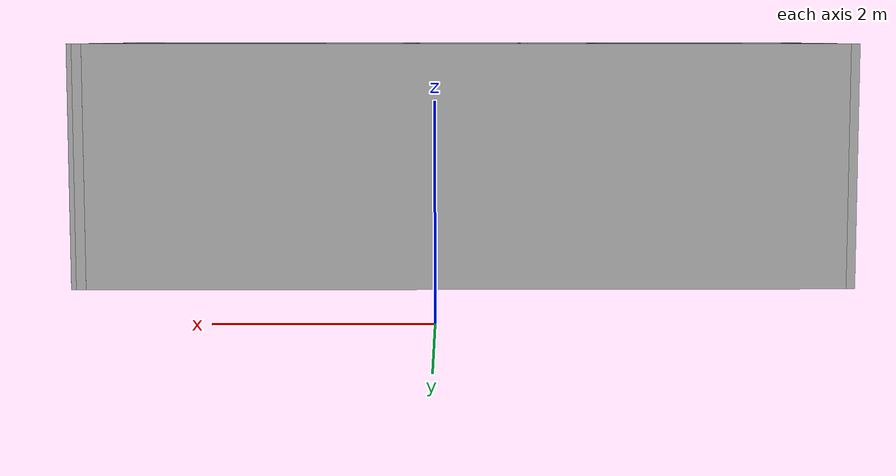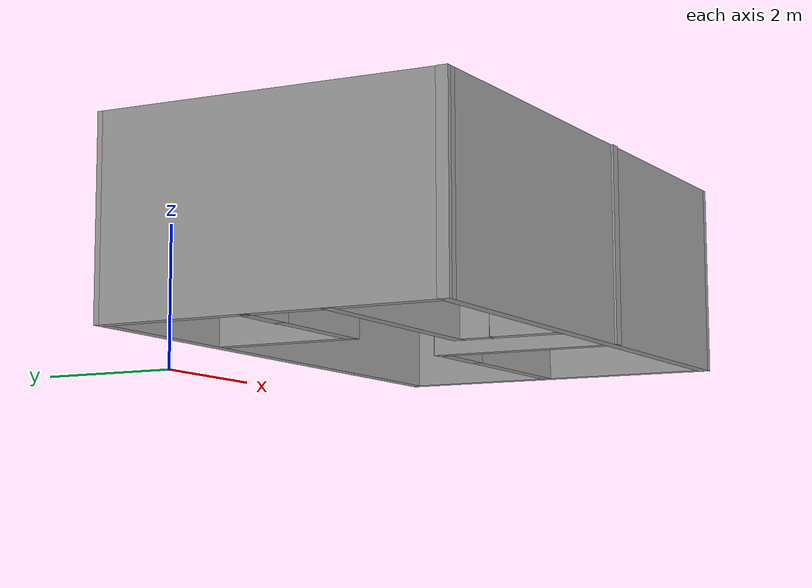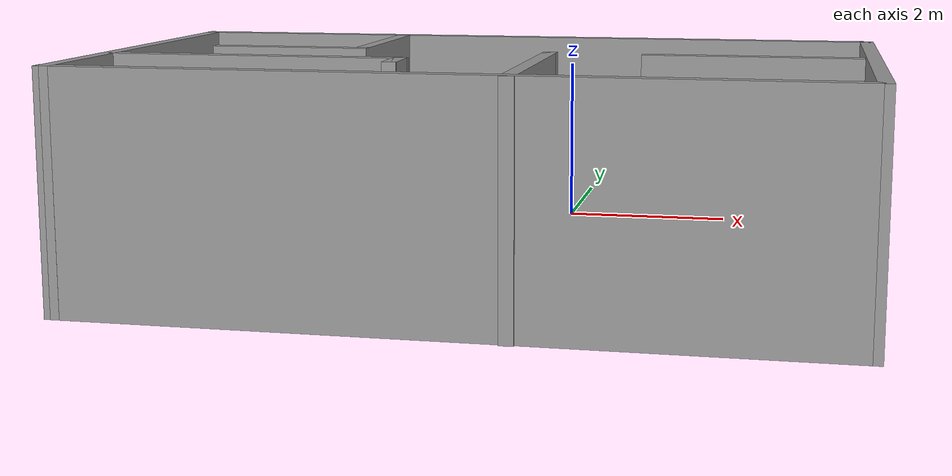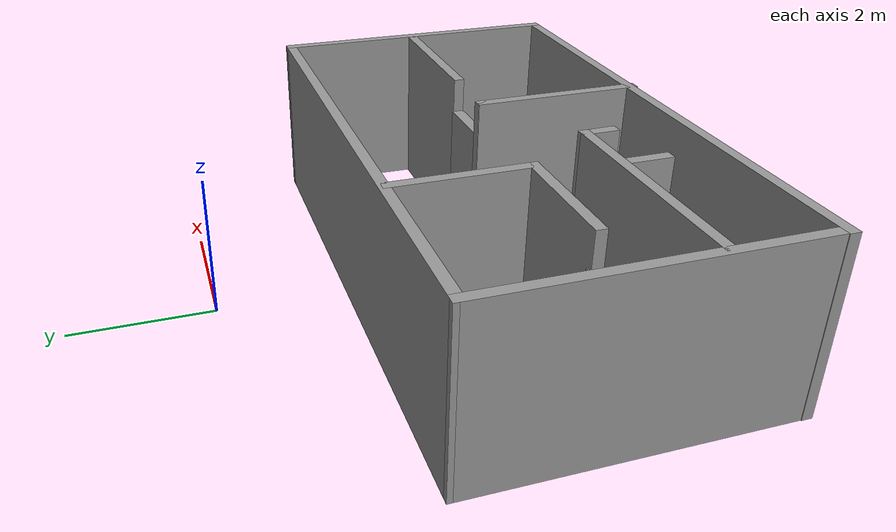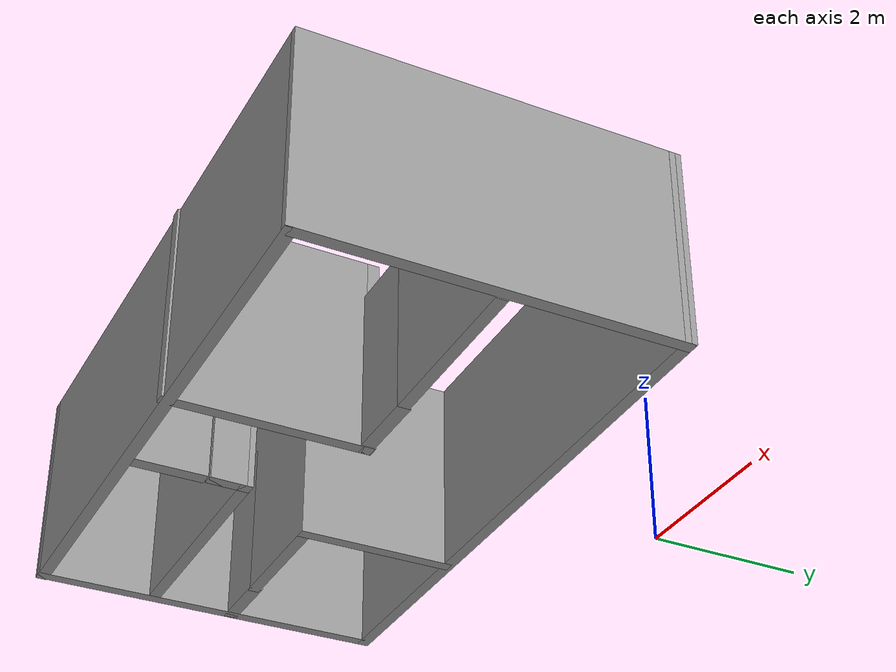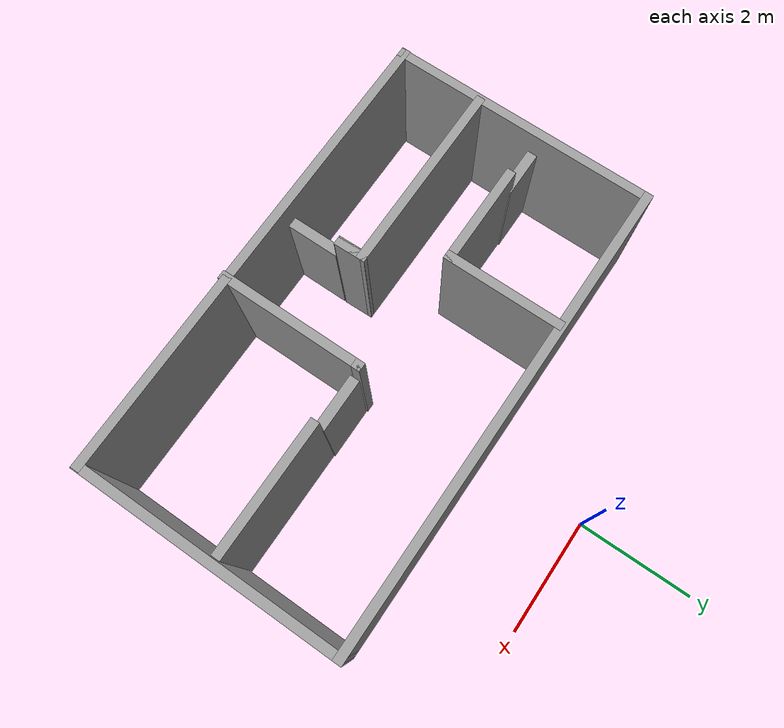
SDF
<?xml version='1.0'?>
<sdf version='1.7'>
  <model name='room'>
    <pose>-0.284915 -3.2025 0 0 -0 0</pose>
    <link name='Door_0'>
      <collision name='Door_0_Collision'>
        <geometry>
          <box>
            <size>0.9 0.17 2</size>
          </box>
        </geometry>
        <pose>0 0 1 0 -0 0</pose>
      </collision>
      <visual name='Door_0_Visual'>
        <pose>0 0 1 0 -0 0</pose>
        <geometry>
          <box>
            <size>0.9 0.17 2</size>
          </box>
        </geometry>
        <material>
          <script>
            <uri>file://media/materials/scripts/gazebo.material</uri>
            <name>Gazebo/Grey</name>
          </script>
        </material>
      </visual>
      <pose>-3.52508 -0.5975 0 0 -0 0</pose>
    </link>
    <link name='Door_4'>
      <collision name='Door_4_Collision'>
        <geometry>
          <box>
            <size>0.9 0.17 2</size>
          </box>
        </geometry>
        <pose>0 0 1 0 -0 0</pose>
      </collision>
      <visual name='Door_4_Visual'>
        <pose>0 0 1 0 -0 0</pose>
        <geometry>
          <box>
            <size>0.9 0.17 2</size>
          </box>
        </geometry>
        <material>
          <script>
            <uri>file://media/materials/scripts/gazebo.material</uri>
            <name>Gazebo/Grey</name>
          </script>
        </material>
      </visual>
      <pose>-0.777259 -2.59266 0 0 0 -1.57064</pose>
    </link>
    <link name='Door_5'>
      <collision name='Door_5_Collision'>
        <geometry>
          <box>
            <size>0.9 0.17 2</size>
          </box>
        </geometry>
        <pose>0 0 1 0 -0 0</pose>
      </collision>
      <visual name='Door_5_Visual'>
        <pose>0 0 1 0 -0 0</pose>
        <geometry>
          <box>
            <size>0.9 0.17 2</size>
          </box>
        </geometry>
        <material>
          <script>
            <uri>file://media/materials/scripts/gazebo.material</uri>
            <name>Gazebo/Grey</name>
          </script>
        </material>
      </visual>
      <pose>1.15274 -0.79266 0 0 -0 0.006358</pose>
    </link>
    <link name='Wall_0'>
      <collision name='Wall_0_Collision'>
        <geometry>
          <box>
            <size>4.5401 0.15 2.5</size>
          </box>
        </geometry>
        <pose>0 0 1.25 0 -0 0</pose>
      </collision>
      <visual name='Wall_0_Visual'>
        <pose>0 0 1.25 0 -0 0</pose>
        <geometry>
          <box>
            <size>4.5401 0.15 2.5</size>
          </box>
        </geometry>
        <material>
          <script>
            <uri>file://media/materials/scripts/gazebo.material</uri>
            <name>Gazebo/Grey</name>
          </script>
          <ambient>1 1 1 1</ambient>
        </material>
        <meta>
          <layer>0</layer>
        </meta>
      </visual>
      <pose>-3.92008 -0.9025 0 0 -0 -1.57307</pose>
    </link>
    <link name='Wall_1'>
      <collision name='Wall_1_Collision'>
        <geometry>
          <box>
            <size>8 0.15 2.5</size>
          </box>
        </geometry>
        <pose>0 0 1.25 0 -0 0</pose>
      </collision>
      <visual name='Wall_1_Visual'>
        <pose>0 0 1.25 0 -0 0</pose>
        <geometry>
          <box>
            <size>8 0.15 2.5</size>
          </box>
        </geometry>
        <material>
          <script>
            <uri>file://media/materials/scripts/gazebo.material</uri>
            <name>Gazebo/Grey</name>
          </script>
          <ambient>1 1 1 1</ambient>
        </material>
        <meta>
          <layer>0</layer>
        </meta>
      </visual>
      <pose>-0.010085 -3.0975 0 0 -0 0</pose>
    </link>
    <link name='Wall_10'>
      <collision name='Wall_10_Collision'>
        <geometry>
          <box>
            <size>2.25 0.15 2.5</size>
          </box>
        </geometry>
        <pose>0 0 1.25 0 -0 0</pose>
      </collision>
      <visual name='Wall_10_Visual'>
        <pose>0 0 1.25 0 -0 0</pose>
        <geometry>
          <box>
            <size>2.25 0.15 2.5</size>
          </box>
        </geometry>
        <material>
          <script>
            <uri>file://media/materials/scripts/gazebo.material</uri>
            <name>Gazebo/Grey</name>
          </script>
          <ambient>1 1 1 1</ambient>
        </material>
        <meta>
          <layer>0</layer>
        </meta>
      </visual>
      <pose>2.71491 -0.7975 0 0 -0 0</pose>
    </link>
    <link name='Wall_14'>
      <collision name='Wall_14_Collision'>
        <geometry>
          <box>
            <size>0.15 0.15 2.5</size>
          </box>
        </geometry>
        <pose>0 0 1.25 0 -0 0</pose>
      </collision>
      <visual name='Wall_14_Visual'>
        <pose>0 0 1.25 0 -0 0</pose>
        <geometry>
          <box>
            <size>0.15 0.15 2.5</size>
          </box>
        </geometry>
        <material>
          <script>
            <uri>file://media/materials/scripts/gazebo.material</uri>
            <name>Gazebo/Grey</name>
          </script>
          <ambient>1 1 1 1</ambient>
        </material>
        <meta>
          <layer>0</layer>
        </meta>
      </visual>
      <pose>0.614915 -0.7675 0 0 -0 0</pose>
    </link>
    <link name='Wall_19'>
      <collision name='Wall_19_Collision'>
        <geometry>
          <box>
            <size>2.5 0.15 2.5</size>
          </box>
        </geometry>
        <pose>0 0 1.25 0 -0 0</pose>
      </collision>
      <visual name='Wall_19_Visual'>
        <pose>0 0 1.25 0 -0 0</pose>
        <geometry>
          <box>
            <size>2.5 0.15 2.5</size>
          </box>
        </geometry>
        <material>
          <script>
            <uri>file://media/materials/scripts/gazebo.material</uri>
            <name>Gazebo/Grey</name>
          </script>
          <ambient>1 1 1 1</ambient>
        </material>
        <meta>
          <layer>0</layer>
        </meta>
      </visual>
      <pose>0.614915 -1.9525 0 0 -0 1.5708</pose>
    </link>
    <link name='Wall_2'>
      <collision name='Wall_2_Collision'>
        <geometry>
          <box>
            <size>4.5401 0.15 2.5</size>
          </box>
        </geometry>
        <pose>0 0 1.25 0 -0 0</pose>
      </collision>
      <visual name='Wall_2_Visual'>
        <pose>0 0 1.25 0 -0 0</pose>
        <geometry>
          <box>
            <size>4.5401 0.15 2.5</size>
          </box>
        </geometry>
        <material>
          <script>
            <uri>file://media/materials/scripts/gazebo.material</uri>
            <name>Gazebo/Grey</name>
          </script>
          <ambient>1 1 1 1</ambient>
        </material>
        <meta>
          <layer>0</layer>
        </meta>
      </visual>
      <pose>3.92991 -0.9025 0 0 -0 1.56852</pose>
    </link>
    <link name='Wall_22'>
      <collision name='Wall_22_Collision'>
        <geometry>
          <box>
            <size>3.25002 0.15 2.5</size>
          </box>
        </geometry>
        <pose>0 0 1.25 0 -0 0</pose>
      </collision>
      <visual name='Wall_22_Visual'>
        <pose>0 0 1.25 0 -0 0</pose>
        <geometry>
          <box>
            <size>3.25002 0.15 2.5</size>
          </box>
        </geometry>
        <material>
          <script>
            <uri>file://media/materials/scripts/gazebo.material</uri>
            <name>Gazebo/Grey</name>
          </script>
          <ambient>1 1 1 1</ambient>
        </material>
        <meta>
          <layer>0</layer>
        </meta>
      </visual>
      <pose>-2.32509 -1.6675 0 0 -0 0</pose>
    </link>
    <link name='Wall_29'>
      <collision name='Wall_29_Collision'>
        <geometry>
          <box>
            <size>0.525242 0.15 2.5</size>
          </box>
        </geometry>
        <pose>0 0 1.25 0 -0 0</pose>
      </collision>
      <visual name='Wall_29_Visual'>
        <pose>0 0 1.25 0 -0 0</pose>
        <geometry>
          <box>
            <size>0.525242 0.15 2.5</size>
          </box>
        </geometry>
        <material>
          <script>
            <uri>file://media/materials/scripts/gazebo.material</uri>
            <name>Gazebo/Grey</name>
          </script>
          <ambient>1 1 1 1</ambient>
        </material>
        <meta>
          <layer>0</layer>
        </meta>
      </visual>
      <pose>-0.771172 -1.85508 0 0 -0 1.59165</pose>
    </link>
    <link name='Wall_3'>
      <collision name='Wall_3_Collision'>
        <geometry>
          <box>
            <size>8 0.15 2.5</size>
          </box>
        </geometry>
        <pose>0 0 1.25 0 -0 0</pose>
      </collision>
      <visual name='Wall_3_Visual'>
        <pose>0 0 1.25 0 -0 0</pose>
        <geometry>
          <box>
            <size>8 0.15 2.5</size>
          </box>
        </geometry>
        <material>
          <script>
            <uri>file://media/materials/scripts/gazebo.material</uri>
            <name>Gazebo/Grey</name>
          </script>
          <ambient>1 1 1 1</ambient>
        </material>
        <meta>
          <layer>0</layer>
        </meta>
      </visual>
      <pose>0.009915 1.2925 0 0 -0 3.14159</pose>
    </link>
    <link name='Wall_30'>
      <collision name='Wall_30_Collision'>
        <geometry>
          <box>
            <size>0.525242 0.15 2.5</size>
          </box>
        </geometry>
        <pose>0 0 1.25 0 -0 0</pose>
      </collision>
      <visual name='Wall_30_Visual'>
        <pose>0 0 1.25 0 -0 0</pose>
        <geometry>
          <box>
            <size>0.525242 0.15 2.5</size>
          </box>
        </geometry>
        <material>
          <script>
            <uri>file://media/materials/scripts/gazebo.material</uri>
            <name>Gazebo/Grey</name>
          </script>
          <ambient>1 1 1 1</ambient>
        </material>
        <meta>
          <layer>0</layer>
        </meta>
      </visual>
      <pose>-0.771172 -1.86508 0 0 -0 -1.54994</pose>
    </link>
    <link name='Wall_5'>
      <collision name='Wall_5_Collision'>
        <geometry>
          <box>
            <size>2 0.15 2.5</size>
          </box>
        </geometry>
        <pose>0 0 1.25 0 -0 0</pose>
      </collision>
      <visual name='Wall_5_Visual'>
        <pose>0 0 1.25 0 -0 0</pose>
        <geometry>
          <box>
            <size>2 0.15 2.5</size>
          </box>
        </geometry>
        <material>
          <script>
            <uri>file://media/materials/scripts/gazebo.material</uri>
            <name>Gazebo/Grey</name>
          </script>
          <ambient>1 1 1 1</ambient>
        </material>
        <meta>
          <layer>0</layer>
        </meta>
      </visual>
      <pose>-1.48508 0.3175 0 0 -0 -1.5708</pose>
    </link>
    <link name='Wall_8'>
      <collision name='Wall_8_Collision'>
        <geometry>
          <box>
            <size>1.75 0.15 2.5</size>
          </box>
        </geometry>
        <pose>0 0 1.25 0 -0 0</pose>
      </collision>
      <visual name='Wall_8_Visual'>
        <pose>0 0 1.25 0 -0 0</pose>
        <geometry>
          <box>
            <size>1.75 0.15 2.5</size>
          </box>
        </geometry>
        <material>
          <script>
            <uri>file://media/materials/scripts/gazebo.material</uri>
            <name>Gazebo/Grey</name>
          </script>
          <ambient>1 1 1 1</ambient>
        </material>
        <meta>
          <layer>0</layer>
        </meta>
      </visual>
      <pose>-2.28509 -0.6075 0 0 -0 3.14159</pose>
    </link>
    <static>1</static>
  </model>
</sdf>
